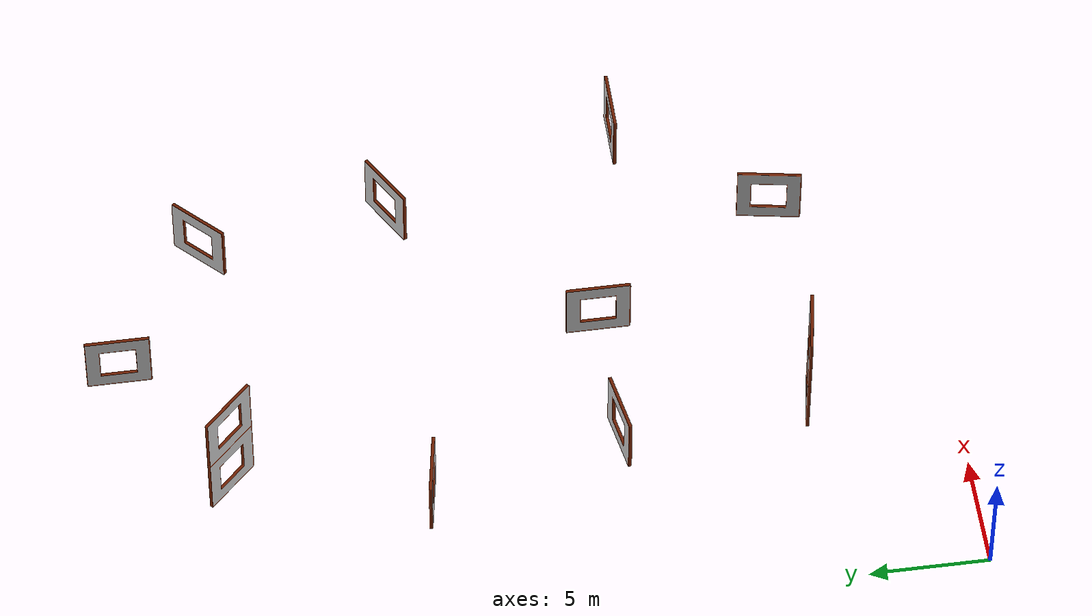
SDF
<sdf version="1.9">
 <world name="x3_a2rl_warehouse_harmonic">
  <plugin filename="gz-sim-physics-system" name="gz::sim::systems::Physics"/>
  <plugin filename="gz-sim-sensors-system" name="gz::sim::systems::Sensors">
   <render_engine>ogre2</render_engine>
  </plugin>
  <plugin filename="gz-sim-scene-broadcaster-system" name="gz::sim::systems::SceneBroadcaster"/>
  <plugin filename="gz-sim-user-commands-system" name="gz::sim::systems::UserCommands"/>
  <physics name="fast" type="ignored">
   <max_step_size>0.004</max_step_size>
   <real_time_factor>1</real_time_factor>
  </physics>
  <scene><ambient>0.3 0.3 0.3</ambient><grid>false</grid></scene>
  <light type="spot" name="spot">
   <pose>0 0 10.0 0 0 0</pose>
   <diffuse>1 1 1 1</diffuse>
   <specular>1 1 1 1</specular>
   <intensity>1</intensity>
   <attenuation>
    <range>30</range>
    <linear>0.03</linear>
    <constant>0.02</constant>
    <quadratic>0.0</quadratic>
   </attenuation>
   <direction>0 0 -1</direction>
   <spot><inner_angle>0</inner_angle><outer_angle>2.5</outer_angle><falloff>0.5</falloff></spot>
   <visualize>false</visualize>
  </light>
  <light type="spot" name="spot2">
   <pose>20 20 10.0 0 0 0</pose>
   <diffuse>1 1 1 1</diffuse>
   <specular>1 1 1 1</specular>
   <intensity>1</intensity>
   <attenuation>
    <range>30</range>
    <linear>0.03</linear>
    <constant>0.02</constant>
    <quadratic>0.0</quadratic>
   </attenuation>
   <direction>0 0 -1</direction>
   <spot><inner_angle>0</inner_angle><outer_angle>2.5</outer_angle><falloff>0.5</falloff></spot>
   <cast_shadows>false</cast_shadows>
   <visualize>false</visualize>
  </light>
  <light type="spot" name="spot3">
   <pose>-20 20 10.0 0 0 0</pose>
   <diffuse>1 1 1 1</diffuse>
   <specular>1 1 1 1</specular>
   <intensity>1</intensity>
   <attenuation>
    <range>30</range>
    <linear>0.03</linear>
    <constant>0.02</constant>
    <quadratic>0.0</quadratic>
   </attenuation>
   <direction>0 0 -1</direction>
   <spot><inner_angle>0</inner_angle><outer_angle>2.5</outer_angle><falloff>0.5</falloff></spot>
   <cast_shadows>false</cast_shadows>
   <visualize>false</visualize>
  </light>
  <light type="spot" name="spot4">
   <pose>20 -20 10.0 0 0 0</pose>
   <diffuse>1 1 1 1</diffuse>
   <specular>1 1 1 1</specular>
   <intensity>1</intensity>
   <attenuation>
    <range>30</range>
    <linear>0.03</linear>
    <constant>0.02</constant>
    <quadratic>0.0</quadratic>
   </attenuation>
   <direction>0 0 -1</direction>
   <spot><inner_angle>0</inner_angle><outer_angle>2.5</outer_angle><falloff>0.5</falloff></spot>
   <cast_shadows>false</cast_shadows>
   <visualize>false</visualize>
  </light>
  <light type="spot" name="spot5">
   <pose>-20 -20 10.0 0 0 0</pose>
   <diffuse>1 1 1 1</diffuse>
   <specular>1 1 1 1</specular>
   <intensity>1</intensity>
   <attenuation>
    <range>30</range>
    <linear>0.03</linear>
    <constant>0.02</constant>
    <quadratic>0.0</quadratic>
   </attenuation>
   <direction>0 0 -1</direction>
   <spot><inner_angle>0</inner_angle><outer_angle>2.5</outer_angle><falloff>0.5</falloff></spot>
   <cast_shadows>false</cast_shadows>
   <visualize>false</visualize>
  </light>
  <include><name>X3</name><uri>model://camera_rig</uri><pose>12 34 0 0 0 0.7854</pose></include>
  <include>
   <static>true</static>
   <name>gate1</name>
   <uri>model://orange_single_gate</uri>
   <pose>14 34 0.0 0.0 0.0 0.0</pose>
  </include>
  <include>
   <static>true</static>
   <name>gate2</name>
   <uri>model://orange_single_gate</uri>
   <pose>20 30 0.0 0.0 0.0 -0.7854</pose>
  </include>
  <include>
   <static>true</static>
   <name>gate3</name>
   <uri>model://orange_single_gate</uri>
   <pose>21 22 0.0 0.0 0.0 -1.0472</pose>
  </include>
  <include>
   <static>true</static>
   <name>gate4</name>
   <uri>model://orange_single_gate</uri>
   <pose>24 12 0.0 0.0 0.0 -1.5708</pose>
  </include>
  <include>
   <static>true</static>
   <name>gate5</name>
   <uri>model://orange_single_gate</uri>
   <pose>19 6 0.0 0.0 0.0 -0.17454</pose>
  </include>
  <include>
   <static>true</static>
   <name>gate6</name>
   <uri>model://orange_single_gate</uri>
   <pose>14 14 0.0 0.0 0.0 0</pose>
  </include>
  <include>
   <static>true</static>
   <name>gate7</name>
   <uri>model://orange_double_gate</uri>
   <pose>9 6 0.0 0.0 0.0 -1.74534</pose>
  </include>
  <include>
   <static>true</static>
   <name>gate8</name>
   <uri>model://orange_single_gate</uri>
   <pose>8 14 0.0 0.0 0.0 -1.396267</pose>
  </include>
  <include>
   <static>true</static>
   <name>gate9</name>
   <uri>model://orange_single_gate</uri>
   <pose>6 22 0.0 0.0 0.0 -1.74534</pose>
  </include>
  <include>
   <static>true</static>
   <name>gate10</name>
   <uri>model://orange_double_gate</uri>
   <pose>8 30 0.0 0.0 0.0 -2.3562</pose>
  </include>
 </world>
</sdf>

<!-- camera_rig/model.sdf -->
<sdf version="1.9">
  <model name="camera_rig">
    <static>true</static>

    <link name="X3/base_link">
      <pose>0 0 0.053302 0 0 0</pose>
      <inertial>
        <mass>0.1</mass>
        <inertia>
          <ixx>1e-04</ixx><ixy>0</ixy><ixz>0</ixz>
          <iyy>1e-04</iyy><iyz>0</iyz>
          <izz>1e-04</izz>
        </inertia>
      </inertial>
    </link>

    <!-- Camera link: identical pose and sensors to X3/camera_link -->
    <link name="X3/camera_link">
      <pose>-0.0015 0.00604 0.0623 0.0 -0.523599 0.0</pose>
      <inertial>
        <mass>0.01</mass>
        <inertia>
          <ixx>1e-06</ixx><ixy>0</ixy><ixz>0</ixz>
          <iyy>1e-06</iyy><iyz>0</iyz>
          <izz>1e-06</izz>
        </inertia>
      </inertial>

      <sensor name="camera" type="camera">
        <camera>
          <horizontal_fov>1.309</horizontal_fov>
          <vertical_fov>1.0472</vertical_fov>
          <image>
            <width>1280</width>
            <height>720</height>
          </image>
          <clip>
            <near>0.05</near>
            <far>50</far>
          </clip>
          <distortion>
            <k1>-0.25390268</k1>
            <k2>0.06240127</k2>
            <k3>0</k3>
            <p1>-0.00113674</p1>
            <p2>0.00213326</p2>
          </distortion>
          <triggered>true</triggered>
          <trigger_topic>/camera_trigger</trigger_topic>
        </camera>
        <always_on>1</always_on>
        <update_rate>30</update_rate>
        <topic>image_raw</topic>
        <frame>X3/camera_link</frame>
      </sensor>

      <sensor name="depth_camera" type="depth_camera">
        <camera>
          <horizontal_fov>1.309</horizontal_fov>
          <vertical_fov>1.0472</vertical_fov>
          <image>
            <width>1280</width>
            <height>720</height>
          </image>
          <clip>
            <near>0.05</near>
            <far>30</far>
          </clip>
          <!-- Triggered with the same /camera_trigger topic as the RGB
               sensor, so one pulse fires both on the same step. Delete these
               two tags for continuous live streaming. -->
          <triggered>true</triggered>
          <trigger_topic>/camera_trigger</trigger_topic>
        </camera>
        <always_on>1</always_on>
        <update_rate>30</update_rate>
        <topic>depth_image</topic>
        <frame>X3/camera_link</frame>
      </sensor>
    </link>

    <joint name="camera_joint" type="fixed">
      <parent>X3/base_link</parent>
      <child>X3/camera_link</child>
    </joint>

    <plugin
      filename="libignition-gazebo-odometry-publisher-system.so"
      name="ignition::gazebo::systems::OdometryPublisher">
      <odom_frame>odom</odom_frame>
      <robot_base_frame>X3/base_link</robot_base_frame>
      <odom_topic>odom</odom_topic>
      <dimensions>3</dimensions>
    </plugin>
  </model>
</sdf>

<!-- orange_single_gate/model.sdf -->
<sdf version="1.9">
  <model name="orange_single_gate">
    <static>true</static>

    <link name="link">
      <visual name="visual">
        <geometry>
          <mesh>
            <uri>model://orange_single_gate/meshes/orange_single_gate.dae</uri>
          </mesh>
        </geometry>
      </visual>

      <collision name="collision">
        <geometry>
          <mesh>
            <uri>model://orange_single_gate/meshes/orange_single_gate.dae</uri>
          </mesh>
        </geometry>
      </collision>
    </link>
  </model>
</sdf>

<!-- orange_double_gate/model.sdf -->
<sdf version="1.9">
  <model name="orange_double_gate">
    <static>true</static>

    <link name="link">
      <visual name="visual">
        <geometry>
          <mesh>
            <uri>model://orange_double_gate/meshes/orange_double_gate.dae</uri>
          </mesh>
        </geometry>
      </visual>

      <collision name="collision">
        <geometry>
          <mesh>
            <uri>model://orange_double_gate/meshes/orange_double_gate.dae</uri>
          </mesh>
        </geometry>
      </collision>
    </link>
  </model>
</sdf>
